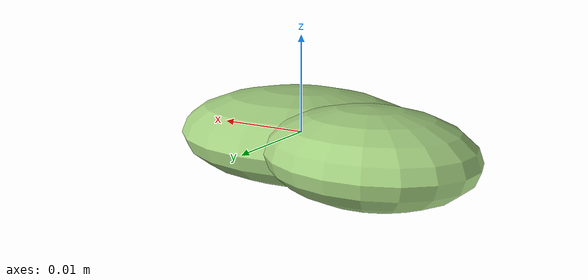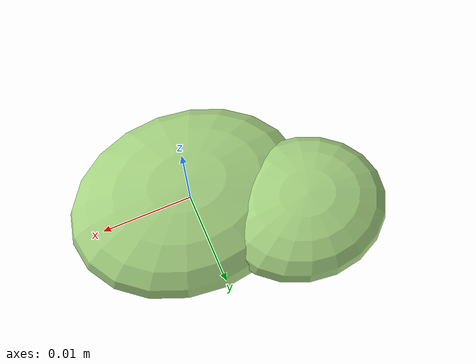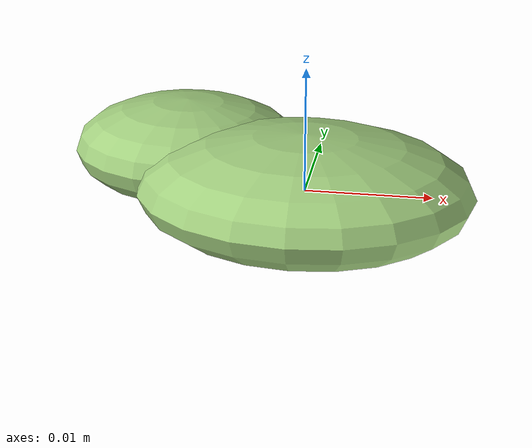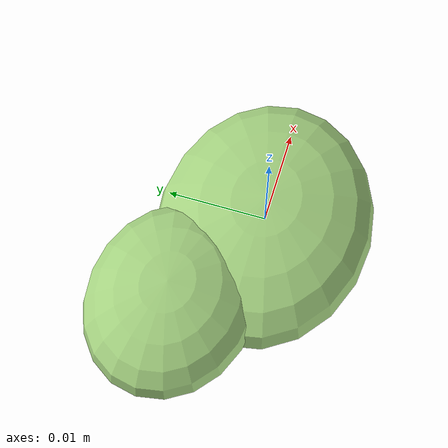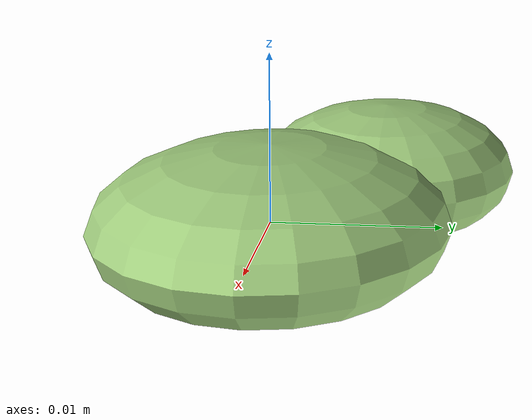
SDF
<?xml version="1.0" ?>
<!-- |    This document was autogenerated by xmacro from data/veggie_template/veggie_base.sdf.xacro  | -->
<!-- |    EDITING THIS FILE BY HAND IS NOT RECOMMENDED                                               | -->
<sdf version="1.8">
	<!-- Parameters -->
	<!-- Base -->
	<!-- Joint 0 -->
	<!-- Link 1 -->
	<!-- Joint 1 -->
	<!-- Link 2 -->
	<!-- Primitives -->
	<!-- All dimensions are half -->
	<!-- Object -->
	<model name="veggie">
		<!-- link0 -->
		<link name="link0">
			<inertial>
				<mass>0.0027919485687425824</mass>
				<inertia>
					<ixx>7.549203837858687e-08</ixx>
					<ixy>0</ixy>
					<ixz>0</ixz>
					<iyy>1.1248771689142618e-07</iyy>
					<iyz>0</iyz>
					<izz>1.636214001599418e-07</izz>
				</inertia>
			</inertial>
			<visual name="link0_visual">
				<pose>0 0 0 0 0 0</pose>
				<geometry>
					<ellipsoid>
						<radii>0.013402945402604085 0.0106482260995665 0.004670251582161468</radii>
					</ellipsoid>
				</geometry>
				<material>
					<ambient>0.659 0.839 0.514 1</ambient>
					<diffuse>0.659 0.839 0.514 1</diffuse>
					<specular>0 0 0 0</specular>
					<emissive>0 0 0 1</emissive>
				</material>
			</visual>
			<collision name="link0_collision">
				<pose>0 0 0 0 0 0 </pose>
				<geometry>
					<ellipsoid>
						<radii>0.013402945402604085 0.0106482260995665 0.004670251582161468</radii>
					</ellipsoid>
				</geometry>
			</collision>
		</link>
		<!-- link1 -->
		<joint name="joint0" type="fixed">
			<pose relative_to="link0">-0.010566972049663953 0.005988556204919845 0.0007093713512243525 0.0 0.0 0.0</pose>
			<parent>link0</parent>
			<child>link1</child>
		</joint>
		<link name="link1">
			<pose relative_to="joint0">0 0 0 0 0 0</pose>
			<inertial>
				<mass>0.0013224946672127618</mass>
				<inertia>
					<ixx>2.1594246333893082e-08</ixx>
					<ixy>0</ixy>
					<ixz>0</ixz>
					<iyy>2.8366975021225703e-08</iyy>
					<iyz>0</iyz>
					<izz>4.088418030178213e-08</izz>
				</inertia>
			</inertial>
			<visual name="link1_visual">
				<pose>0 0 0 0 0 0</pose>
				<geometry>
					<ellipsoid>
						<radii>0.009491524540793016 0.008030140429673751 0.004142334724111482</radii>
					</ellipsoid>
				</geometry>
				<material>
					<ambient>0.659 0.839 0.514 1</ambient>
					<diffuse>0.659 0.839 0.514 1</diffuse>
					<specular>0 0 0 0</specular>
					<emissive>0 0 0 1</emissive>
				</material>
			</visual>
			<collision name="link1_collision">
				<pose>0 0 0 0 0 0 </pose>
				<geometry>
					<ellipsoid>
						<radii>0.009491524540793016 0.008030140429673751 0.004142334724111482</radii>
					</ellipsoid>
				</geometry>
			</collision>
		</link>
		<!-- link2 -->
	</model>
</sdf>
